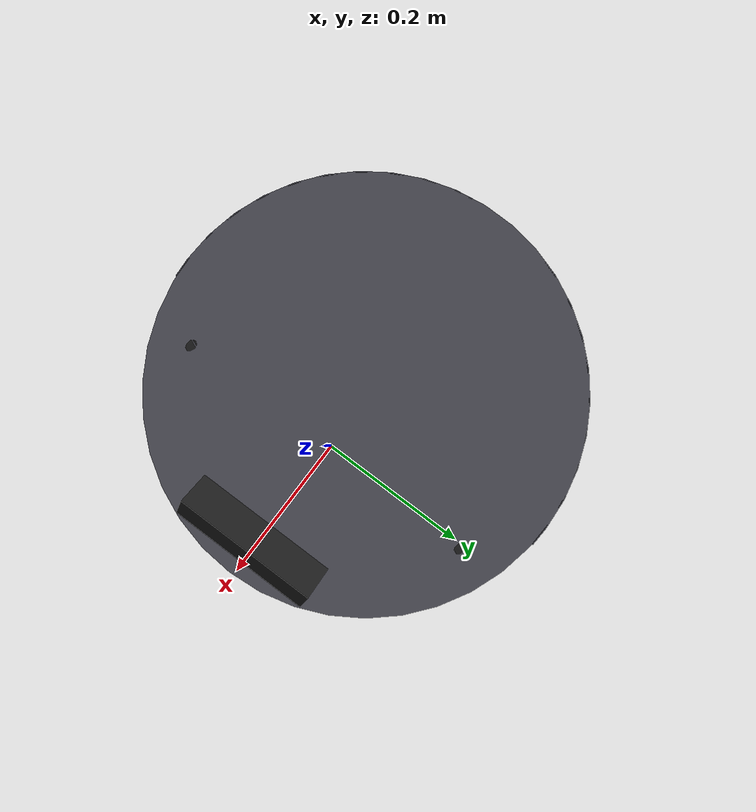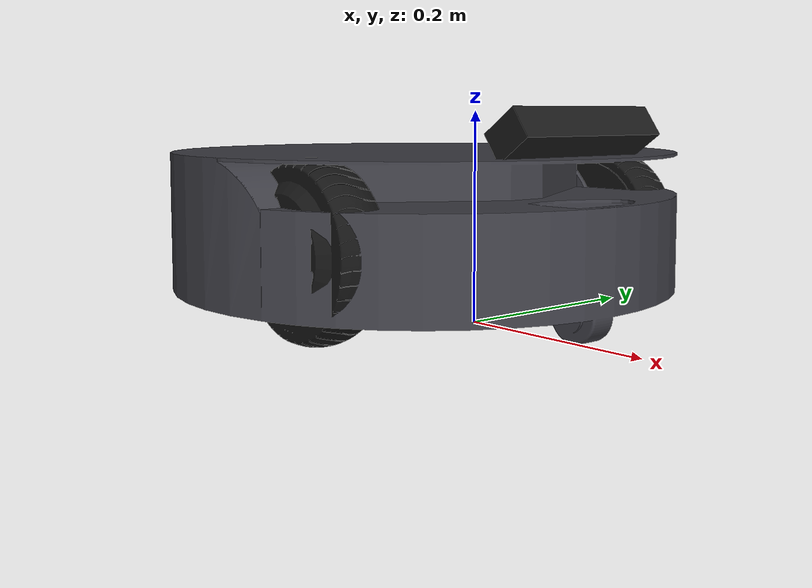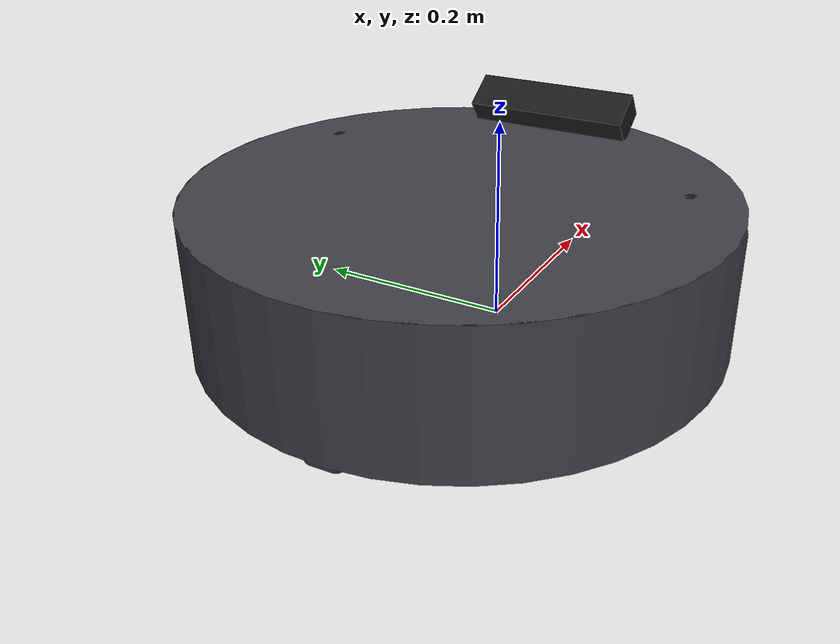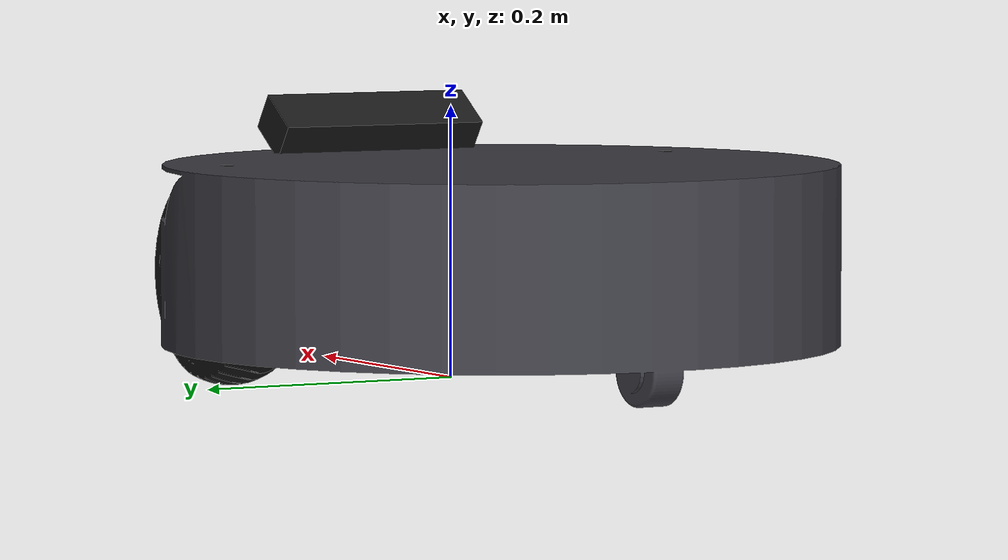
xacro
<?xml version="1.0" encoding="utf-8"?>
<robot name="tcc_robot" xmlns:xacro="http://www.ros.org/wiki/xacro">

  <xacro:include filename="$(find description)/urdf/robot.urdf.xacro" />

  <xacro:property name="caster_radius" value="0.02" />

  <!-- ── Rodízios de apoio ───────────────────────────────────────────── -->
  <!-- O robô real se equilibra em duas rodas coaxiais; no simulador o
       corpo tombaria. Duas esferas de baixo atrito dão os pontos de apoio. -->
  <xacro:macro name="caster" params="name x">
    <joint name="caster_${name}_joint" type="fixed">
      <origin xyz="${x} 0 ${-chassis_z + caster_radius}" />
      <parent link="chassis_link" />
      <child  link="caster_${name}_link" />
    </joint>
    <link name="caster_${name}_link">
      <inertial>
        <mass value="0.01" />
        <inertia ixx="1e-6" ixy="0" ixz="0" iyy="1e-6" iyz="0" izz="1e-6" />
      </inertial>
      <collision>
        <geometry><sphere radius="${caster_radius}" /></geometry>
      </collision>
    </link>
    <gazebo reference="caster_${name}_link">
      <mu1>0.01</mu1>
      <mu2>0.01</mu2>
    </gazebo>
  </xacro:macro>

  <xacro:caster name="front" x="0.20" />
  <xacro:caster name="rear"  x="-0.20" />

  <gazebo reference="left_wheel_link">
    <mu1>1.0</mu1>
    <mu2>1.0</mu2>
  </gazebo>
  <gazebo reference="right_wheel_link">
    <mu1>1.0</mu1>
    <mu2>1.0</mu2>
  </gazebo>

  <!-- ── Acionamento diferencial e estado das juntas ─────────────────── -->
  <gazebo>
    <plugin filename="gz-sim-diff-drive-system" name="gz::sim::systems::DiffDrive">
      <left_joint>left_wheel_joint</left_joint>
      <right_joint>right_wheel_joint</right_joint>
      <wheel_separation>${wheel_separation}</wheel_separation>
      <wheel_radius>${wheel_radius}</wheel_radius>
      <topic>/sim/cmd_vel</topic>
      <odom_topic>/model/tcc_robot/odometry</odom_topic>
      <tf_topic>/model/tcc_robot/tf</tf_topic>
      <frame_id>odom</frame_id>
      <child_frame_id>base_link</child_frame_id>
      <odom_publish_frequency>25</odom_publish_frequency>
      <max_linear_acceleration>1.0</max_linear_acceleration>
      <min_linear_acceleration>-1.0</min_linear_acceleration>
      <max_angular_acceleration>2.0</max_angular_acceleration>
      <min_angular_acceleration>-2.0</min_angular_acceleration>
    </plugin>
    <!-- Verdade de campo (pose exata no mundo) para as métricas de localização -->
    <plugin filename="gz-sim-odometry-publisher-system"
            name="gz::sim::systems::OdometryPublisher">
      <odom_frame>world</odom_frame>
      <robot_base_frame>base_link</robot_base_frame>
      <odom_topic>/model/tcc_robot/ground_truth</odom_topic>
      <odom_publish_frequency>20</odom_publish_frequency>
      <dimensions>2</dimensions>
    </plugin>
    <plugin filename="gz-sim-joint-state-publisher-system"
            name="gz::sim::systems::JointStatePublisher">
      <topic>/model/tcc_robot/joint_states</topic>
      <joint_name>left_wheel_joint</joint_name>
      <joint_name>right_wheel_joint</joint_name>
    </plugin>
  </gazebo>

  <!-- ── LiDAR 2D ────────────────────────────────────────────────────── -->
  <!-- Alcance mínimo fora do corpo (raio 0.245 m) para o próprio robô não
       aparecer na leitura — no real o laser_filters faz o mesmo. -->
  <gazebo reference="lidar_scan_link">
    <sensor name="lidar" type="gpu_lidar">
      <topic>/scan_raw</topic>
      <gz_frame_id>lidar_scan_link</gz_frame_id>
      <update_rate>10</update_rate>
      <always_on>1</always_on>
      <visualize>false</visualize>
      <lidar>
        <scan>
          <horizontal>
            <samples>720</samples>
            <min_angle>-3.141592</min_angle>
            <max_angle>3.141592</max_angle>
          </horizontal>
          <vertical>
            <samples>1</samples>
            <min_angle>0</min_angle>
            <max_angle>0</max_angle>
          </vertical>
        </scan>
        <range>
          <min>0.26</min>
          <max>12.0</max>
          <resolution>0.01</resolution>
        </range>
        <noise>
          <type>gaussian</type>
          <mean>0.0</mean>
          <stddev>0.01</stddev>
        </noise>
      </lidar>
    </sensor>
  </gazebo>

  <!-- ── IMU ─────────────────────────────────────────────────────────── -->
  <gazebo reference="imu_link">
    <sensor name="imu" type="imu">
      <topic>/imu/data</topic>
      <gz_frame_id>imu_link</gz_frame_id>
      <update_rate>100</update_rate>
      <always_on>1</always_on>
    </sensor>
  </gazebo>

  <!-- ── Câmera RGB-D ────────────────────────────────────────────────── -->
  <!-- Imagens saem no frame ótico (Z para a frente), como no driver real.
       Profundidade limitada a 2.5 m, alcance útil da Astra. -->
  <gazebo reference="camera_link">
    <sensor name="rgbd_camera" type="rgbd_camera">
      <topic>/camera</topic>
      <gz_frame_id>camera_color_optical_frame</gz_frame_id>
      <update_rate>15</update_rate>
      <always_on>1</always_on>
      <camera>
        <horizontal_fov>1.0472</horizontal_fov>
        <image>
          <width>640</width>
          <height>480</height>
          <format>R8G8B8</format>
        </image>
        <clip>
          <near>0.1</near>
          <far>15.0</far>
        </clip>
        <depth_camera>
          <clip>
            <near>0.3</near>
            <far>2.5</far>
          </clip>
        </depth_camera>
      </camera>
    </sensor>
  </gazebo>

</robot>

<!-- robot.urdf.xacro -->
<robot name="tcc_robot" xmlns:xacro="http://www.ros.org/wiki/xacro">

  <!-- ── Rodas ─────────────────────────────────────────────────────── -->
  <xacro:property name="wheel_radius"     value="0.0825" />
  <xacro:property name="wheel_separation" value="0.310" />
  <xacro:property name="wheel_width"      value="0.050" />
  <xacro:property name="wheel_mass"       value="0.958" />

  <!-- ── Corpo ─────────────────────────────────────────────────────── -->
  <!-- O centro do corpo fica atrás do eixo das rodas. -->
  <xacro:property name="chassis_offset_x" value="-0.075" />
  <xacro:property name="chassis_z"        value="0.0305" />
  <xacro:property name="body_radius"      value="0.245" />
  <xacro:property name="body_height"      value="0.120" />
  <xacro:property name="body_mass"        value="11.7" />

  <!-- ── Sensores (relativos ao chassis_link) ──────────────────────── -->
  <xacro:property name="lidar_x" value="0.0" />
  <xacro:property name="lidar_y" value="0.0" />
  <xacro:property name="lidar_z" value="0.095" />

  <xacro:property name="imu_x" value="-0.05" />
  <xacro:property name="imu_y" value="-0.10" />
  <xacro:property name="imu_z" value="0.05" />

  <!-- Câmera montada invertida (roll = pi) e inclinada 35° para baixo -->
  <xacro:property name="camera_x"     value="0.200" />
  <xacro:property name="camera_y"     value="0.0" />
  <xacro:property name="camera_z"     value="0.150" />
  <xacro:property name="camera_roll"  value="${pi}" />
  <xacro:property name="camera_pitch" value="${-35.0 * pi / 180}" />
  <xacro:property name="camera_yaw"   value="0.0" />

  <!-- ── Macros de inércia ─────────────────────────────────────────── -->
  <xacro:macro name="inertia_zero">
    <inertia ixx="1e-09" ixy="0" ixz="0" iyy="1e-09" iyz="0" izz="1e-09" />
  </xacro:macro>
  <xacro:macro name="inertia_cylinder" params="m r h">
    <inertia ixx="${m*(3*r*r + h*h)/12.0}" ixy="0" ixz="0"
             iyy="${m*(3*r*r + h*h)/12.0}" iyz="0"
             izz="${m*r*r/2.0}" />
  </xacro:macro>

  <material name="body_gray">  <color rgba="0.25 0.25 0.28 1" /></material>
  <material name="wheel_black"><color rgba="0.08 0.08 0.08 1" /></material>
  <material name="sensor_dark"><color rgba="0.10 0.10 0.10 1" /></material>

  <link name="base_link" />

  <joint name="base_to_chassis" type="fixed">
    <origin xyz="${chassis_offset_x} 0 ${chassis_z}" rpy="0 0 0" />
    <parent link="base_link" />
    <child  link="chassis_link" />
  </joint>

  <link name="chassis_link">
    <inertial>
      <origin xyz="0 0 0.07" />
      <mass value="${body_mass}" />
      <xacro:inertia_cylinder m="${body_mass}" r="${body_radius}" h="${body_height}" />
    </inertial>
    <visual>
      <!-- Malha exportada do CAD com Y para cima: corrigida aqui -->
      <origin rpy="${pi/2} 0 ${pi/2}" />
      <geometry>
        <mesh filename="package://description/meshes/chassis_link.STL" />
      </geometry>
      <material name="body_gray" />
    </visual>
    <collision>
      <origin xyz="0 0 0.07" />
      <geometry><cylinder radius="${body_radius}" length="${body_height}" /></geometry>
    </collision>
  </link>

  <!-- ── Rodas ─────────────────────────────────────────────────────── -->
  <xacro:macro name="wheel" params="side y visual_roll">
    <link name="${side}_wheel_link">
      <inertial>
        <mass value="${wheel_mass}" />
        <xacro:inertia_cylinder m="${wheel_mass}" r="${wheel_radius}" h="${wheel_width}" />
      </inertial>
      <visual>
        <origin rpy="${visual_roll} 0 0" />
        <geometry>
          <mesh filename="package://description/meshes/${side}_wheel_link.STL" />
        </geometry>
        <material name="wheel_black" />
      </visual>
      <collision>
        <origin rpy="${pi/2} 0 0" />
        <geometry><cylinder radius="${wheel_radius}" length="${wheel_width}" /></geometry>
      </collision>
    </link>
    <joint name="${side}_wheel_joint" type="continuous">
      <origin xyz="${-chassis_offset_x} ${y} ${wheel_radius - chassis_z}" />
      <parent link="chassis_link" />
      <child  link="${side}_wheel_link" />
      <axis xyz="0 1 0" />
      <dynamics damping="0.1" friction="0.1" />
    </joint>
  </xacro:macro>

  <xacro:wheel side="left"  y="${wheel_separation/2}"  visual_roll="${3*pi/2}" />
  <xacro:wheel side="right" y="${-wheel_separation/2}" visual_roll="${pi/2}" />

  <!-- ── IMU ───────────────────────────────────────────────────────── -->
  <joint name="imu_joint" type="fixed">
    <origin xyz="${imu_x} ${imu_y} ${imu_z}" />
    <parent link="chassis_link" />
    <child  link="imu_link" />
  </joint>
  <link name="imu_link" />

  <!-- ── LiDAR 2D ──────────────────────────────────────────────────── -->
  <joint name="lidar_joint" type="fixed">
    <origin xyz="${lidar_x} ${lidar_y} ${lidar_z}" />
    <parent link="chassis_link" />
    <child  link="lidar_link" />
  </joint>
  <link name="lidar_link">
    <visual>
      <geometry>
        <mesh filename="package://description/meshes/lidar_link.STL" />
      </geometry>
      <material name="sensor_dark" />
    </visual>
  </link>

  <!-- Frame publicado pelo driver sllidar_ros2 (montagem girada 180°) -->
  <joint name="lidar_scan_joint" type="fixed">
    <origin xyz="0 0 0" rpy="0 0 ${pi}" />
    <parent link="lidar_link" />
    <child  link="lidar_scan_link" />
  </joint>
  <link name="lidar_scan_link" />

  <!-- ── Câmera RGB-D (Orbbec Astra) ───────────────────────────────── -->
  <joint name="camera_joint" type="fixed">
    <origin xyz="${camera_x} ${camera_y} ${camera_z}"
            rpy="${camera_roll} ${camera_pitch} ${camera_yaw}" />
    <parent link="chassis_link" />
    <child  link="camera_link" />
  </joint>
  <link name="camera_link">
    <visual>
      <geometry><box size="0.040 0.165 0.030" /></geometry>
      <material name="sensor_dark" />
    </visual>
  </link>

  <xacro:macro name="optical_frame" params="name">
    <joint name="camera_${name}_joint" type="fixed">
      <parent link="camera_link" />
      <child  link="camera_${name}_frame" />
    </joint>
    <link name="camera_${name}_frame" />
    <joint name="camera_${name}_optical_joint" type="fixed">
      <origin rpy="${-pi/2} 0 ${-pi/2}" />
      <parent link="camera_${name}_frame" />
      <child  link="camera_${name}_optical_frame" />
    </joint>
    <link name="camera_${name}_optical_frame" />
  </xacro:macro>

  <xacro:optical_frame name="color" />
  <xacro:optical_frame name="depth" />

</robot>
